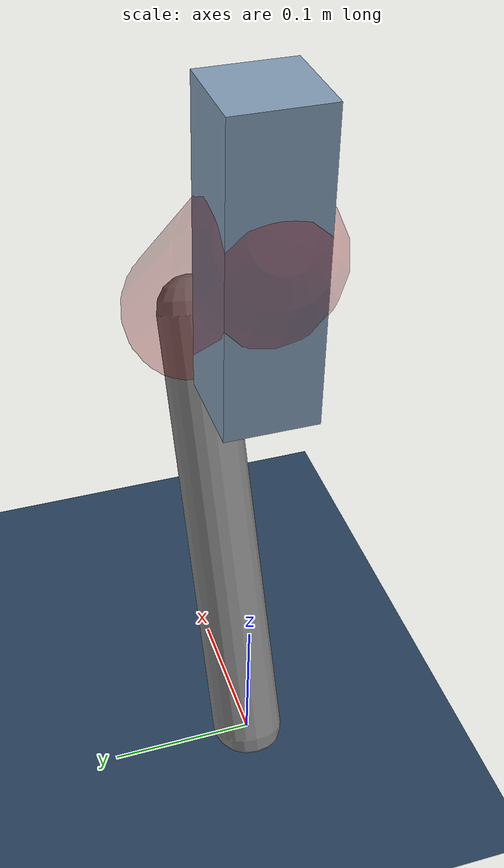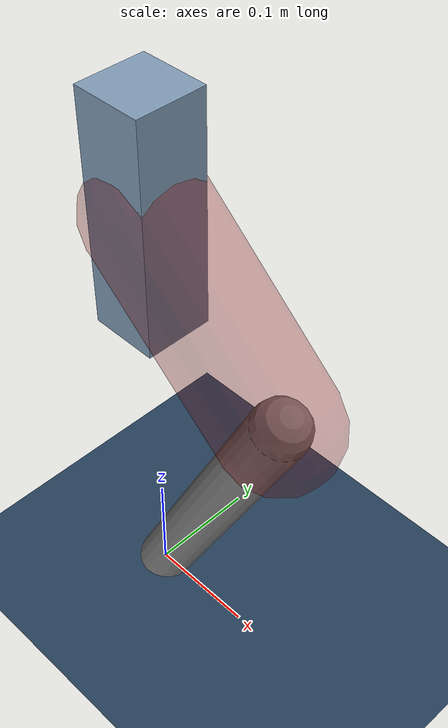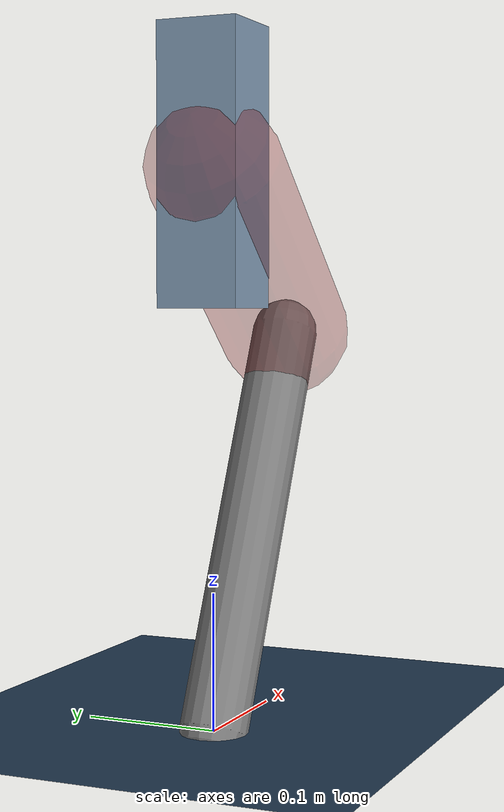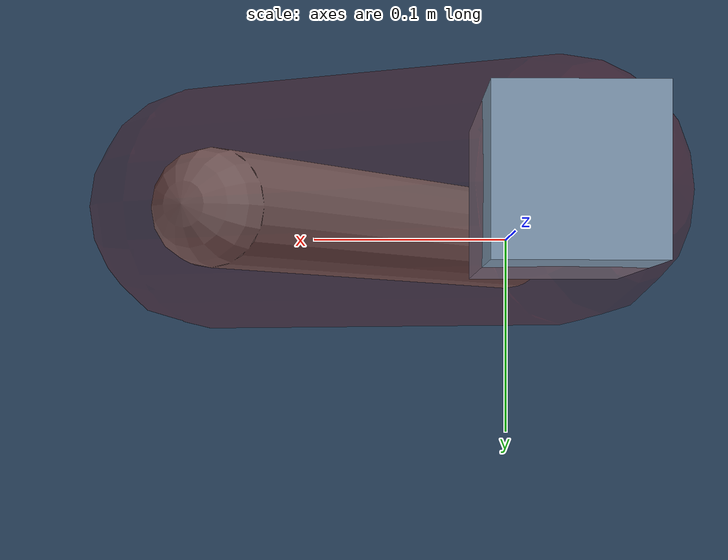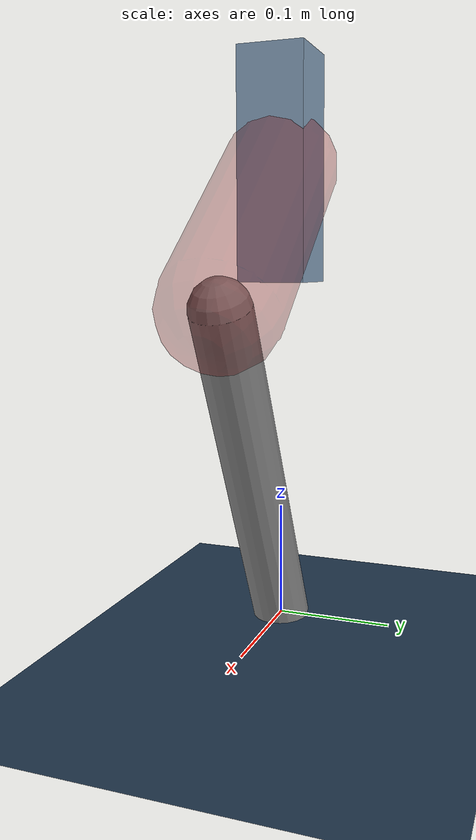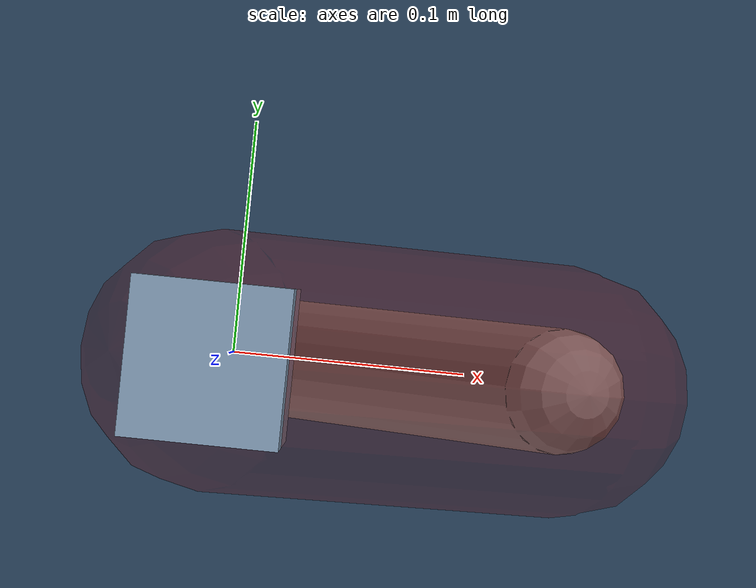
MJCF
<mujoco model="Hopper2D">
	<compiler inertiafromgeom="true" angle="radian" />
	<option timestep="0.001" integrator="implicit" cone="elliptic" solver="Newton" tolerance="1e-10" />

	<default>
		<geom contype="1" conaffinity="1" condim="3" friction="2 0.005 0.0001" solref="0.005 1" />
		<joint limited="true" damping="0.1" />
	</default>

	<asset>
		<texture name="skybox" type="skybox" builtin="gradient" rgb1=".4 .6 .8" rgb2="0 0 0" width="800" height="800" />
		<texture name="grid" type="2d" builtin="checker" rgb1=".1 .2 .3" rgb2=".2 .3 .4" width="300" height="300" mark="edge" markrgb=".2 .3 .4" />
		<material name="ground" texture="grid" texrepeat="1 1" texuniform="true" reflectance="0.1" />
		<material name="leg" rgba="0.5 0.6 0.7 1" />
	</asset>

	<worldbody>

		<geom name="floor" type="plane" size="5 5 0.25" material="ground" />

		<light directional="false" diffuse="0.8 0.8 0.8" specular="0.3 0.3 0.3" pos="0 0 2" dir="0 0 -1" />
		<light mode="targetbodycom" target="base" directional="false" diffuse="0.8 0.8 0.8" specular="0.3 0.3 0.3" pos="0 0 2" dir="0 0 -1" />

		<camera name="fixed" pos="0 -2 1" xyaxes="1 0 0 0 0 1" />
		<camera name="tracking" mode="trackcom" pos="0 -3 1" />

		<body name="root" pos="0 0 0.40430952281558447">
			<joint name="slide_x" type="slide" axis="1 0 0" range="-100 100" />
			<joint name="slide_z" type="slide" axis="0 0 1" range="0 10" />

			<body name="base" pos="0 0 0">
				<geom name="torso" type="box" size="0.03 0.03 0.1" mass="2.754" material="leg" />

				<body name="link1" pos="0 0 0" euler="0 0.7152654935135547 0">
					<joint type="hinge" axis="0 -1 0" pos="0 0 0" name="hinge1" limited="true" range="-3.14 3.14" stiffness="0" damping="0.1" />
					<geom name="thigh" type="capsule" fromto="0 0 0 0.1804409320166605 0 0" size="0.05" rgba="0.5 0 0 0.3" mass="0.6815582368399852" />

					<body name="link2" pos="0.1804409320166605 0 0" euler="0 1.3000658561988923 0">
						<joint type="hinge" axis="0 -1 0" pos="0 0 0" name="hinge2" limited="true" range="-3.14 3.14" stiffness="0" damping="0.1" />
						<geom name="shank" type="capsule" fromto="0 0 0 0.3167586840099485 0 0" size="0.025" mass="0.4970069472079588" />

					</body>
				</body>
			</body>
		</body>
	</worldbody>

	<actuator>
		<motor name="torque1" joint="hinge1" ctrlrange="-82.17158412763665 82.17158412763665" ctrllimited="true" gear="1" />
		<motor name="torque2" joint="hinge2" ctrlrange="-48.74233339492542 48.74233339492542" ctrllimited="true" gear="1" />
	</actuator>
</mujoco>
